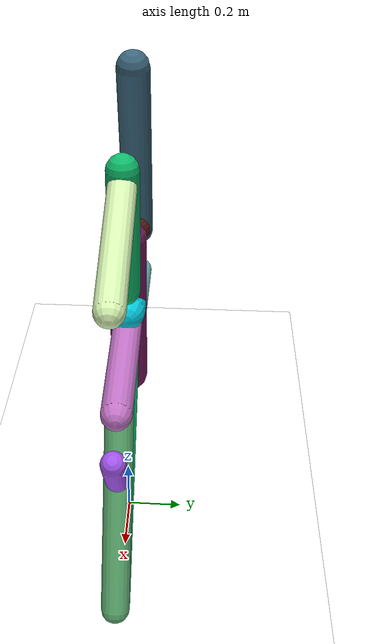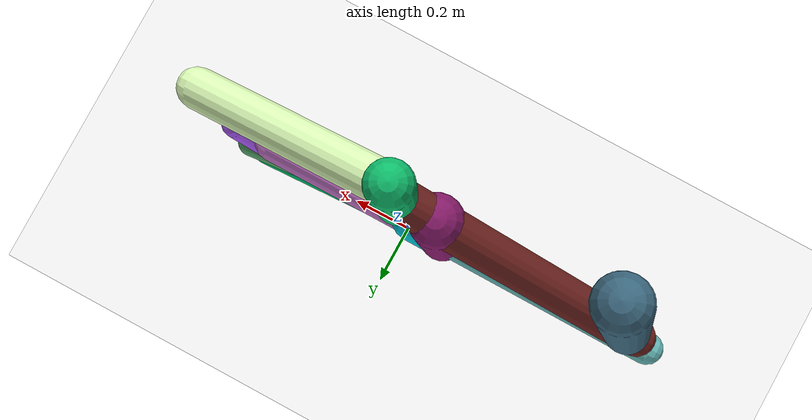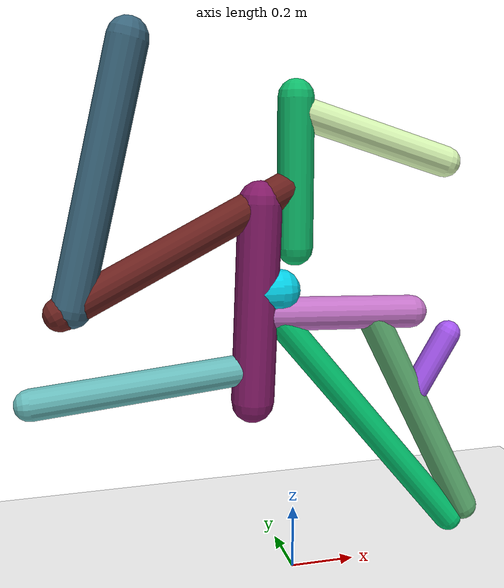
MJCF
<mujoco model="morphology">
  <option timestep="0.01"/>
  <default>
    <default class="/"/>
    <default class="0/"/>
    <default class="0/1/"/>
    <default class="0/2/"/>
    <default class="0/2/3/"/>
    <default class="0/2/4/"/>
    <default class="0/2/4/5/"/>
    <default class="0/2/4/6/"/>
    <default class="0/2/4/7/"/>
    <default class="0/2/4/7/8/"/>
    <default class="0/2/4/7/9/"/>
    <default class="0/2/4/7/9/10/"/>
  </default>
  <asset>
    <texture name="texplane" type="2d" builtin="checker" rgb1="0.10000000000000001 0.20000000000000001 0.29999999999999999" rgb2="0.20000000000000001 0.29999999999999999 0.40000000000000002" width="300" height="300"/>
    <material name="MatPlane" class="/" texture="texplane" texrepeat="20 20" specular="1" shininess="1" reflectance="0.5"/>
  </asset>
  <worldbody>
    <light name="//unnamed_light_0" class="/" directional="true" pos="0 0 1.5" dir="0 0 -1.3" cutoff="100" exponent="1" diffuse="1 1 1" specular="0.10000000000000001 0.10000000000000001 0.10000000000000001"/>
    <geom name="ground" class="/" type="plane" size="15 15 0.5" material="MatPlane" rgba="1 1 1 1"/>
    <site name="body" class="/" size="9.9999999999999995e-07 9.9999999999999995e-07 9.9999999999999995e-07" pos="0 0 1.4308166265487672"/>
    <body pos="0 0 1.4308166265487672" name="0/">
      <joint name="0/rootx/" class="/" type="slide" axis="1 0 0" limited="false" stiffness="0" armature="0" damping="0"/>
      <joint name="0/rootz/" class="/" type="slide" axis="0 0 1" limited="false" stiffness="0" armature="0" damping="0"/>
      <joint name="0/rooty/" class="/" type="hinge" axis="0 1 0" limited="false" stiffness="0" armature="0" damping="0"/>
      <geom name="0/geom" class="0/" type="capsule" contype="1" conaffinity="1" condim="3" size="0.051953347605531455" rgba="0.054278991652007114 0.73455962098082705 0.41776271063471315 1" friction="0.59999999999999998 0.10000000000000001 0.10000000000000001" fromto="0 0 0 0.00026744023786084981 0 -0.42062630452320676"/>
      <site name="0/end0" class="0/" size="0.0050000000000000001" pos="0.00026744023786084981 0 -0.42062630452320676"/>
      <site name="0/attach1" class="0/" size="9.9999999999999995e-07 9.9999999999999995e-07 9.9999999999999995e-07" pos="2.2270079152713689e-05 0 -0.035026072255885263"/>
      <body pos="2.2270079152713689e-05 0 -0.035026072255885263" name="0/1/">
        <joint name="0/1/joint/" class="0/" type="hinge" axis="0 1 0" limited="true" range="-58.404084346691334 58.404084346691334"/>
        <geom name="0/1/geom" class="0/1/" type="capsule" contype="1" conaffinity="1" condim="3" size="0.045452699818541317" rgba="0.84765530728723093 0.96874663947951212 0.70381845366015283 1" friction="0.59999999999999998 0.10000000000000001 0.10000000000000001" fromto="0 0 0 0.46282816290142814 0 -0.14736295805279664"/>
        <site name="0/1/end1" class="0/1/" size="0.0050000000000000001" pos="0.46282816290142814 0 -0.14736295805279664"/>
      </body>
      <site name="0/attach2" class="0/" size="9.9999999999999995e-07 9.9999999999999995e-07 9.9999999999999995e-07" pos="0.00015082853098638679 0 -0.237221025949271"/>
      <body pos="0.00015082853098638679 0 -0.237221025949271" name="0/2/">
        <geom name="0/2/geom" class="0/2/" type="capsule" contype="1" conaffinity="1" condim="3" size="0.049677888131568461" rgba="0.42593546131800297 0.13424662481805272 0.12217200943103523 1" friction="0.59999999999999998 0.10000000000000001 0.10000000000000001" fromto="0 0 0 -0.66716089747766438 0 -0.34010424501444264"/>
        <site name="0/2/end2" class="0/2/" size="0.0050000000000000001" pos="-0.66716089747766438 0 -0.34010424501444264"/>
        <site name="0/2/attach3" class="0/2/" size="9.9999999999999995e-07 9.9999999999999995e-07 9.9999999999999995e-07" pos="-0.63828966727301062 0 -0.3253863141697011"/>
        <body pos="-0.63828966727301062 0 -0.3253863141697011" name="0/2/3/">
          <geom name="0/2/3/geom" class="0/2/3/" type="capsule" contype="1" conaffinity="1" condim="3" size="0.057368292030582801" rgba="0.2299237827776639 0.40137647509359553 0.49000119540792064 1" friction="0.59999999999999998 0.10000000000000001 0.10000000000000001" fromto="0 0 0 0.17823792094214852 0 0.71024171643507006"/>
          <site name="0/2/3/end3" class="0/2/3/" size="0.0050000000000000001" pos="0.17823792094214852 0 0.71024171643507006"/>
        </body>
        <site name="0/2/attach4" class="0/2/" size="9.9999999999999995e-07 9.9999999999999995e-07 9.9999999999999995e-07" pos="-0.10352041055153348 0 -0.052772473937432972"/>
        <body pos="-0.10352041055153348 0 -0.052772473937432972" name="0/2/4/">
          <joint name="0/2/4/joint/" class="0/2/" type="hinge" axis="0 1 0" limited="true" range="-54.242667783525889 54.242667783525889"/>
          <geom name="0/2/4/geom" class="0/2/4/" type="capsule" contype="1" conaffinity="1" condim="3" size="0.063901087044023863" rgba="0.51701219769455931 0.10353484890556264 0.40756030071394056 1" friction="0.59999999999999998 0.10000000000000001 0.10000000000000001" fromto="0 0 0 -0.024187553518157934 0 -0.58475446428240729"/>
          <site name="0/2/4/end4" class="0/2/4/" size="0.0050000000000000001" pos="-0.024187553518157934 0 -0.58475446428240729"/>
          <site name="0/2/4/attach5" class="0/2/4/" size="9.9999999999999995e-07 9.9999999999999995e-07 9.9999999999999995e-07" pos="-0.010474777638283122 0 -0.25323656573011127"/>
          <body pos="-0.010474777638283122 0 -0.25323656573011127" name="0/2/4/5/">
            <joint name="0/2/4/5/joint/" class="0/2/4/" type="hinge" axis="0 1 0" limited="true" range="-54.14652990352841 54.14652990352841"/>
            <geom name="0/2/4/5/geom" class="0/2/4/5/" type="capsule" contype="1" conaffinity="1" condim="3" size="0.063216110718751287" rgba="0.021606457669084533 0.82352884231021006 0.91069125270816365 1" friction="0.59999999999999998 0.10000000000000001 0.10000000000000001" fromto="0 0 0 0.065591078003058856 0 -0.00031509864919188058"/>
            <site name="0/2/4/5/end5" class="0/2/4/5/" size="0.0050000000000000001" pos="0.065591078003058856 0 -0.00031509864919188058"/>
          </body>
          <site name="0/2/4/attach6" class="0/2/4/" size="9.9999999999999995e-07 9.9999999999999995e-07 9.9999999999999995e-07" pos="-0.019934435409689113 0 -0.48193175428073465"/>
          <body pos="-0.019934435409689113 0 -0.48193175428073465" name="0/2/4/6/">
            <joint name="0/2/4/6/joint/" class="0/2/4/" type="hinge" axis="0 1 0" limited="true" range="-54.638616621485163 54.638616621485163"/>
            <geom name="0/2/4/6/geom" class="0/2/4/6/" type="capsule" contype="1" conaffinity="1" condim="3" size="0.045880601472102274" rgba="0.403498792628463 0.73197277573172681 0.73178479902886528 1" friction="0.59999999999999998 0.10000000000000001 0.10000000000000001" fromto="0 0 0 -0.63969588228767993 0 -0.057945273121359775"/>
            <site name="0/2/4/6/end6" class="0/2/4/6/" size="0.0050000000000000001" pos="-0.63969588228767993 0 -0.057945273121359775"/>
          </body>
          <site name="0/2/4/attach7" class="0/2/4/" size="9.9999999999999995e-07 9.9999999999999995e-07 9.9999999999999995e-07" pos="-0.013290243808801458 0 -0.32130283010078226"/>
          <body pos="-0.013290243808801458 0 -0.32130283010078226" name="0/2/4/7/">
            <geom name="0/2/4/7/geom" class="0/2/4/7/" type="capsule" contype="1" conaffinity="1" condim="3" size="0.049998200905795091" rgba="0.7698312074957171 0.45511487160879871 0.78587866350754298 1" friction="0.59999999999999998 0.10000000000000001 0.10000000000000001" fromto="0 0 0 0.48595254598726756 0 -0.019350060962482263"/>
            <site name="0/2/4/7/end7" class="0/2/4/7/" size="0.0050000000000000001" pos="0.48595254598726756 0 -0.019350060962482263"/>
            <site name="0/2/4/7/attach8" class="0/2/4/7/" size="9.9999999999999995e-07 9.9999999999999995e-07 9.9999999999999995e-07" pos="0.056198328468311846 0 -0.0022377515887732971"/>
            <body pos="0.056198328468311846 0 -0.0022377515887732971" name="0/2/4/7/8/">
              <joint name="0/2/4/7/8/joint/" class="0/2/4/7/" type="hinge" axis="0 1 0" limited="true" range="-51.558428728280695 51.558428728280695"/>
              <geom name="0/2/4/7/8/geom" class="0/2/4/7/8/" type="capsule" contype="1" conaffinity="1" condim="3" size="0.044009997111023755" rgba="0.0063703483147991014 0.78175014694958478 0.44073341902521157 1" friction="0.59999999999999998 0.10000000000000001 0.10000000000000001" fromto="0 0 0 0.59133008352181116 0 -0.7172825978629811"/>
              <site name="0/2/4/7/8/end8" class="0/2/4/7/8/" size="0.0050000000000000001" pos="0.59133008352181116 0 -0.7172825978629811"/>
            </body>
            <site name="0/2/4/7/attach9" class="0/2/4/7/" size="9.9999999999999995e-07 9.9999999999999995e-07 9.9999999999999995e-07" pos="0.3559515164683788 0 -0.014173572296772375"/>
            <body pos="0.3559515164683788 0 -0.014173572296772375" name="0/2/4/7/9/">
              <joint name="0/2/4/7/9/joint/" class="0/2/4/7/" type="hinge" axis="0 1 0" limited="true" range="-51.254618658062547 51.254618658062547"/>
              <geom name="0/2/4/7/9/geom" class="0/2/4/7/9/" type="capsule" contype="1" conaffinity="1" condim="3" size="0.047020900847868641" rgba="0.37107306655959627 0.69207417505799951 0.44585890940624917 1" friction="0.59999999999999998 0.10000000000000001 0.10000000000000001" fromto="0 0 0 0.34139529354128317 0 -0.66903504368944788"/>
              <site name="0/2/4/7/9/end9" class="0/2/4/7/9/" size="0.0050000000000000001" pos="0.34139529354128317 0 -0.66903504368944788"/>
              <site name="0/2/4/7/9/attach10" class="0/2/4/7/9/" size="9.9999999999999995e-07 9.9999999999999995e-07 9.9999999999999995e-07" pos="0.14356358825681634 0 -0.28134269381777022"/>
              <body pos="0.14356358825681634 0 -0.28134269381777022" name="0/2/4/7/9/10/">
                <joint name="0/2/4/7/9/10/joint/" class="0/2/4/7/9/" type="hinge" axis="0 1 0" limited="true" range="-37.892542285162129 37.892542285162129"/>
                <geom name="0/2/4/7/9/10/geom" class="0/2/4/7/9/10/" type="capsule" contype="1" conaffinity="1" condim="3" size="0.04014355206229988" rgba="0.64256657657239535 0.33516227049827729 0.93806705001031387 1" friction="0.59999999999999998 0.10000000000000001 0.10000000000000001" fromto="0 0 0 0.11608726044306983 0 0.19806580687940056"/>
                <site name="0/2/4/7/9/10/end10" class="0/2/4/7/9/10/" size="0.0050000000000000001" pos="0.11608726044306983 0 0.19806580687940056"/>
              </body>
            </body>
          </body>
        </body>
      </body>
      <camera name="0/side" class="0/" mode="trackcom" pos="0.40000000000000002 -4 0.20000000000000001" quat="0.70699999999999996 0.70699999999999996 0 0"/>
    </body>
  </worldbody>
  <actuator>
    <motor name="0/1/motor" class="0/1/" ctrllimited="true" ctrlrange="-1 1" gear="62" joint="0/1/joint/"/>
    <motor name="0/2/4/motor" class="0/2/4/" ctrllimited="true" ctrlrange="-1 1" gear="74" joint="0/2/4/joint/"/>
    <motor name="0/2/4/5/motor" class="0/2/4/5/" ctrllimited="true" ctrlrange="-1 1" gear="77" joint="0/2/4/5/joint/"/>
    <motor name="0/2/4/6/motor" class="0/2/4/6/" ctrllimited="true" ctrlrange="-1 1" gear="79" joint="0/2/4/6/joint/"/>
    <motor name="0/2/4/7/8/motor" class="0/2/4/7/8/" ctrllimited="true" ctrlrange="-1 1" gear="52" joint="0/2/4/7/8/joint/"/>
    <motor name="0/2/4/7/9/motor" class="0/2/4/7/9/" ctrllimited="true" ctrlrange="-1 1" gear="87" joint="0/2/4/7/9/joint/"/>
    <motor name="0/2/4/7/9/10/motor" class="0/2/4/7/9/10/" ctrllimited="true" ctrlrange="-1 1" gear="66" joint="0/2/4/7/9/10/joint/"/>
  </actuator>
  <sensor>
    <subtreelinvel name="velocity" body="0/"/>
  </sensor>
</mujoco>
